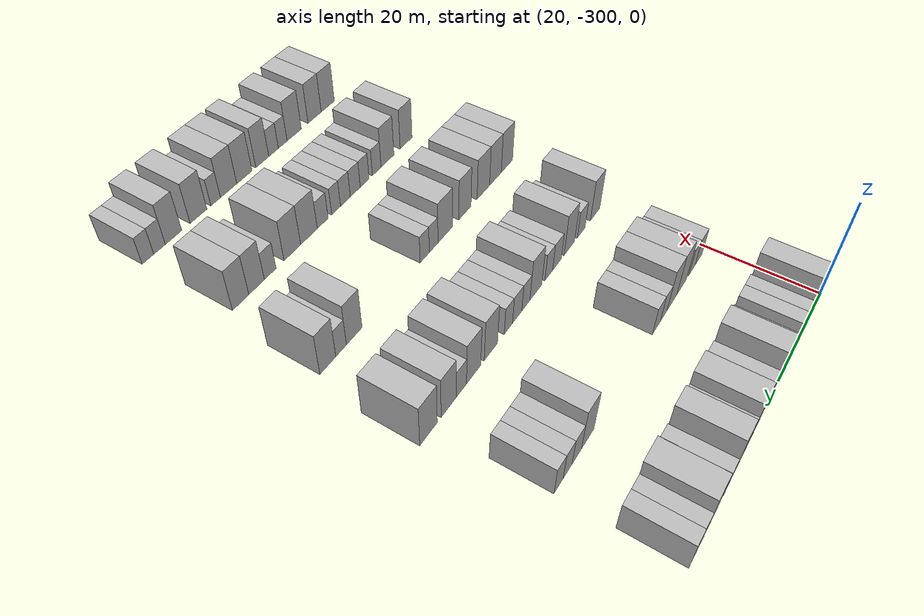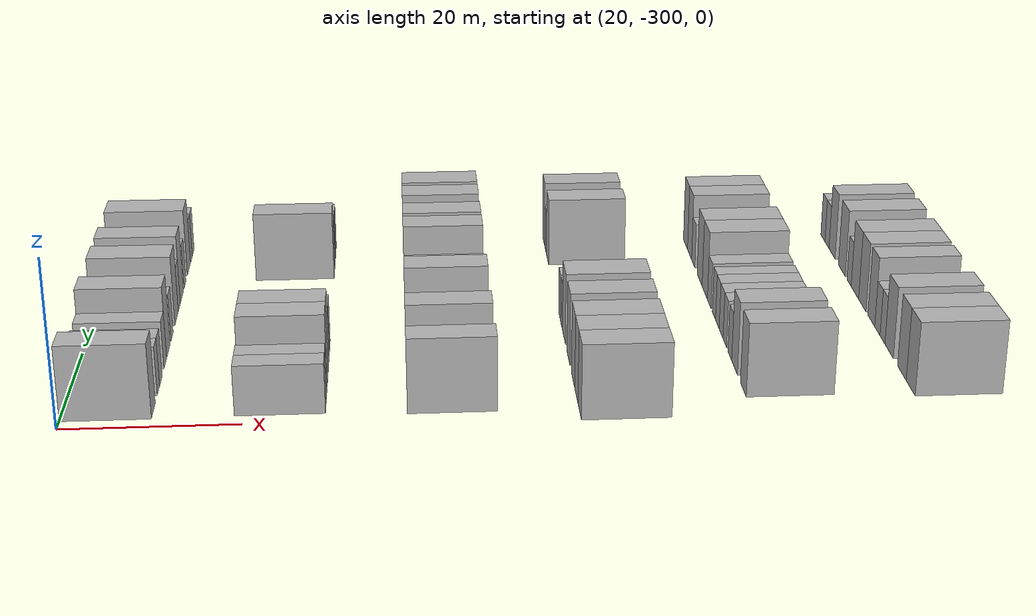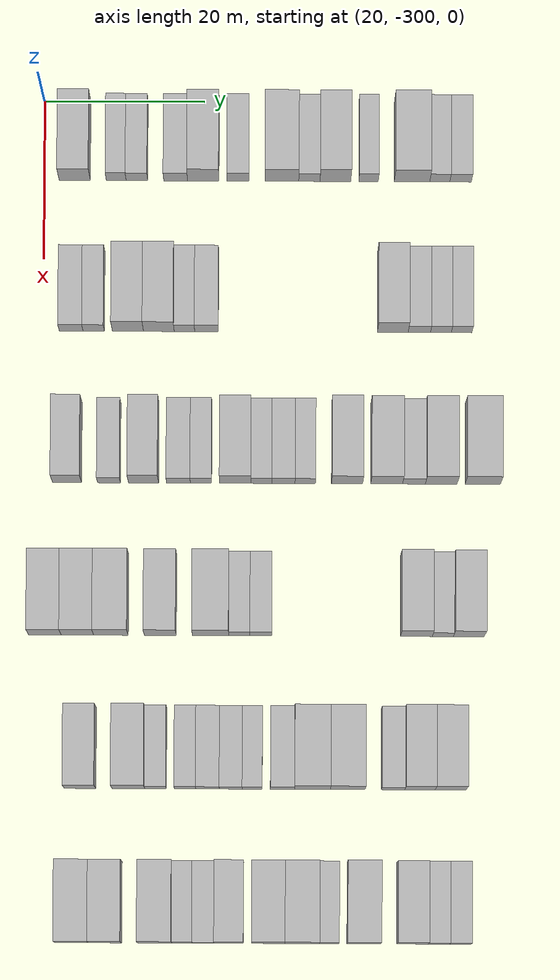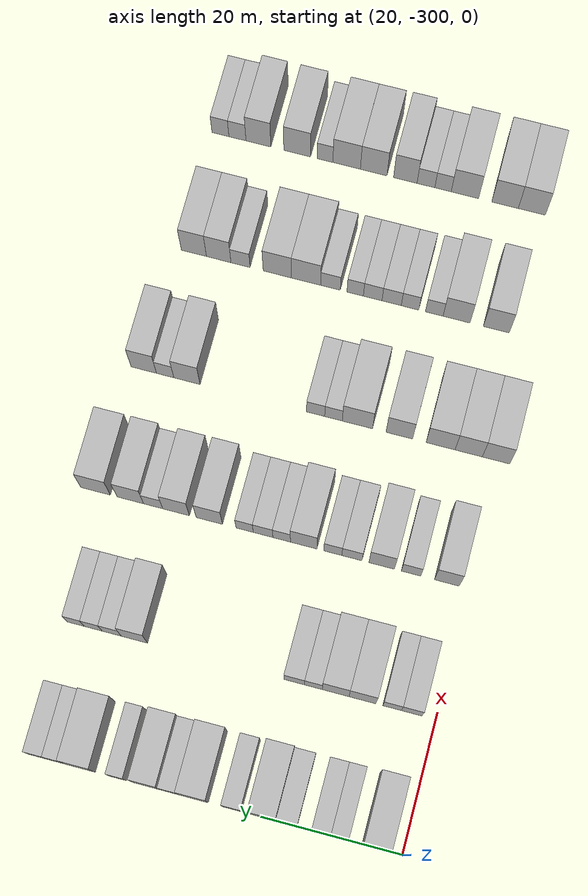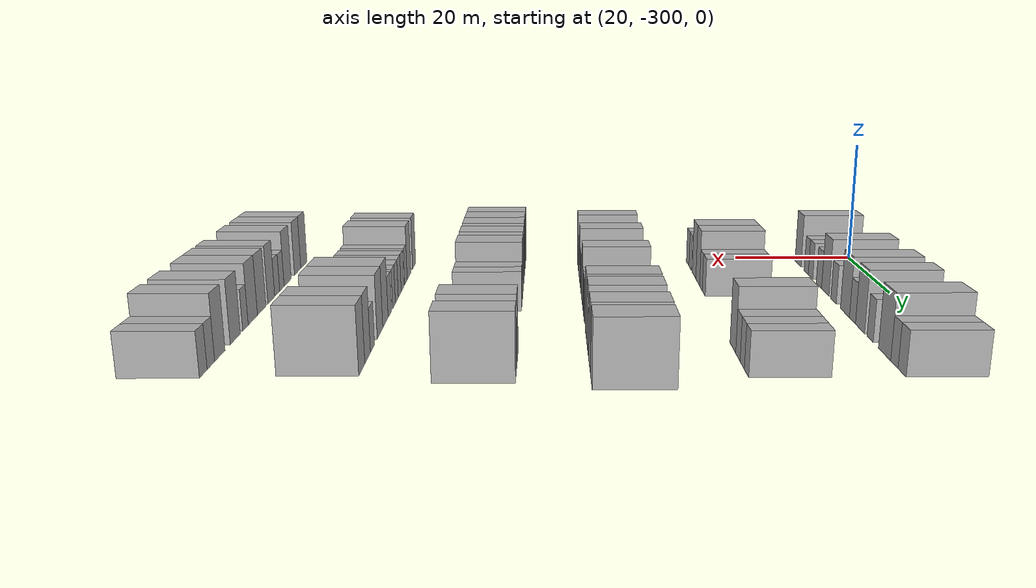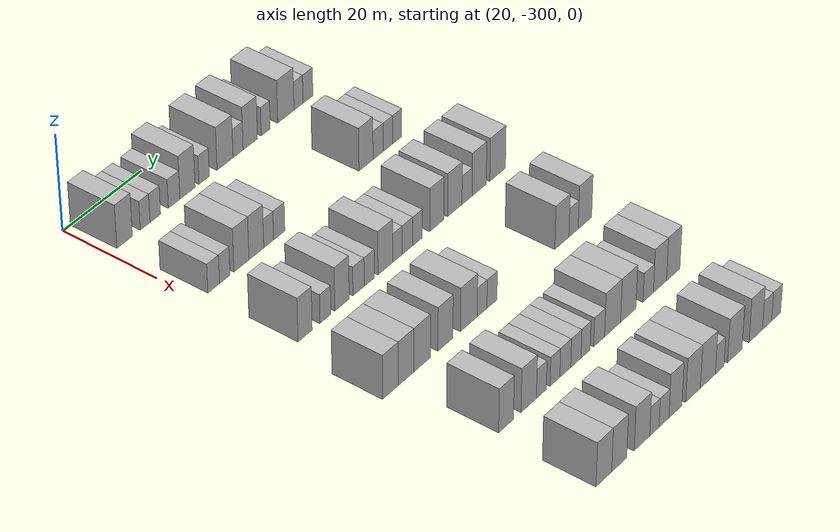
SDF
<sdf version="1.6">
 <world name="default">
  <model name="building_15">
   <static>1</static>
   <pose>25.0000 -296.1881 0 0.000000 0.000000 0.000000</pose>
   <link name="link">
    <pose>0 0 4.50 0 0 0</pose>
    <collision name="collision"><geometry><box><size>10.0000 3.8890 9.0000</size></box></geometry></collision>
    <visual name="visual">
     <cast_shadows>0</cast_shadows>
     <geometry><box><size>10.0000 3.8890 9.0000</size></box></geometry>
     <material>
      <script>
       <uri>model://HANNAS_wall/materials/scripts</uri>
       <uri>model://HANNAS_wall/materials/textures</uri>
       <name>vrc/HANNAS_wall</name>
      </script>
     </material>
    </visual>
   </link>
  </model>
  <model name="building_16">
   <static>1</static>
   <pose>25.0000 -291.0046 0 0.000000 0.000000 0.000000</pose>
   <link name="link">
    <pose>0 0 3.00 0 0 0</pose>
    <collision name="collision"><geometry><box><size>10.0000 2.4780 6.0000</size></box></geometry></collision>
    <visual name="visual">
     <cast_shadows>0</cast_shadows>
     <geometry><box><size>10.0000 2.4780 6.0000</size></box></geometry>
     <material>
      <script>
       <uri>model://HANNAS_wall/materials/scripts</uri>
       <uri>model://HANNAS_wall/materials/textures</uri>
       <name>vrc/HANNAS_wall</name>
      </script>
     </material>
    </visual>
   </link>
  </model>
  <model name="building_17">
   <static>1</static>
   <pose>25.0000 -288.4177 0 0.000000 0.000000 0.000000</pose>
   <link name="link">
    <pose>0 0 3.00 0 0 0</pose>
    <collision name="collision"><geometry><box><size>10.0000 2.6958 6.0000</size></box></geometry></collision>
    <visual name="visual">
     <cast_shadows>0</cast_shadows>
     <geometry><box><size>10.0000 2.6958 6.0000</size></box></geometry>
     <material>
      <script>
       <uri>model://HANNAS_wall/materials/scripts</uri>
       <uri>model://HANNAS_wall/materials/textures</uri>
       <name>vrc/HANNAS_wall</name>
      </script>
     </material>
    </visual>
   </link>
  </model>
  <model name="building_18">
   <static>1</static>
   <pose>25.0000 -283.5823 0 0.000000 0.000000 0.000000</pose>
   <link name="link">
    <pose>0 0 3.00 0 0 0</pose>
    <collision name="collision"><geometry><box><size>10.0000 2.9750 6.0000</size></box></geometry></collision>
    <visual name="visual">
     <cast_shadows>0</cast_shadows>
     <geometry><box><size>10.0000 2.9750 6.0000</size></box></geometry>
     <material>
      <script>
       <uri>model://HANNAS_wall/materials/scripts</uri>
       <uri>model://HANNAS_wall/materials/textures</uri>
       <name>vrc/HANNAS_wall</name>
      </script>
     </material>
    </visual>
   </link>
  </model>
  <model name="building_19">
   <static>1</static>
   <pose>25.0000 -280.1263 0 0.000000 0.000000 0.000000</pose>
   <link name="link">
    <pose>0 0 4.50 0 0 0</pose>
    <collision name="collision"><geometry><box><size>10.0000 3.9369 9.0000</size></box></geometry></collision>
    <visual name="visual">
     <cast_shadows>0</cast_shadows>
     <geometry><box><size>10.0000 3.9369 9.0000</size></box></geometry>
     <material>
      <script>
       <uri>model://HANNAS_wall/materials/scripts</uri>
       <uri>model://HANNAS_wall/materials/textures</uri>
       <name>vrc/HANNAS_wall</name>
      </script>
     </material>
    </visual>
   </link>
  </model>
  <model name="building_20">
   <static>1</static>
   <pose>25.0000 -275.7909 0 0.000000 0.000000 0.000000</pose>
   <link name="link">
    <pose>0 0 3.00 0 0 0</pose>
    <collision name="collision"><geometry><box><size>10.0000 2.7338 6.0000</size></box></geometry></collision>
    <visual name="visual">
     <cast_shadows>0</cast_shadows>
     <geometry><box><size>10.0000 2.7338 6.0000</size></box></geometry>
     <material>
      <script>
       <uri>model://HANNAS_wall/materials/scripts</uri>
       <uri>model://HANNAS_wall/materials/textures</uri>
       <name>vrc/HANNAS_wall</name>
      </script>
     </material>
    </visual>
   </link>
  </model>
  <model name="building_21">
   <static>1</static>
   <pose>25.0000 -270.3111 0 0.000000 0.000000 0.000000</pose>
   <link name="link">
    <pose>0 0 4.50 0 0 0</pose>
    <collision name="collision"><geometry><box><size>10.0000 4.2259 9.0000</size></box></geometry></collision>
    <visual name="visual">
     <cast_shadows>0</cast_shadows>
     <geometry><box><size>10.0000 4.2259 9.0000</size></box></geometry>
     <material>
      <script>
       <uri>model://HANNAS_wall/materials/scripts</uri>
       <uri>model://HANNAS_wall/materials/textures</uri>
       <name>vrc/HANNAS_wall</name>
      </script>
     </material>
    </visual>
   </link>
  </model>
  <model name="building_22">
   <static>1</static>
   <pose>25.0000 -266.8667 0 0.000000 0.000000 0.000000</pose>
   <link name="link">
    <pose>0 0 3.00 0 0 0</pose>
    <collision name="collision"><geometry><box><size>10.0000 2.6630 6.0000</size></box></geometry></collision>
    <visual name="visual">
     <cast_shadows>0</cast_shadows>
     <geometry><box><size>10.0000 2.6630 6.0000</size></box></geometry>
     <material>
      <script>
       <uri>model://HANNAS_wall/materials/scripts</uri>
       <uri>model://HANNAS_wall/materials/textures</uri>
       <name>vrc/HANNAS_wall</name>
      </script>
     </material>
    </visual>
   </link>
  </model>
  <model name="building_23">
   <static>1</static>
   <pose>25.0000 -263.6140 0 0.000000 0.000000 0.000000</pose>
   <link name="link">
    <pose>0 0 4.50 0 0 0</pose>
    <collision name="collision"><geometry><box><size>10.0000 3.8423 9.0000</size></box></geometry></collision>
    <visual name="visual">
     <cast_shadows>0</cast_shadows>
     <geometry><box><size>10.0000 3.8423 9.0000</size></box></geometry>
     <material>
      <script>
       <uri>model://HANNAS_wall/materials/scripts</uri>
       <uri>model://HANNAS_wall/materials/textures</uri>
       <name>vrc/HANNAS_wall</name>
      </script>
     </material>
    </visual>
   </link>
  </model>
  <model name="building_24">
   <static>1</static>
   <pose>25.0000 -259.4730 0 0.000000 0.000000 0.000000</pose>
   <link name="link">
    <pose>0 0 3.00 0 0 0</pose>
    <collision name="collision"><geometry><box><size>10.0000 2.4398 6.0000</size></box></geometry></collision>
    <visual name="visual">
     <cast_shadows>0</cast_shadows>
     <geometry><box><size>10.0000 2.4398 6.0000</size></box></geometry>
     <material>
      <script>
       <uri>model://HANNAS_wall/materials/scripts</uri>
       <uri>model://HANNAS_wall/materials/textures</uri>
       <name>vrc/HANNAS_wall</name>
      </script>
     </material>
    </visual>
   </link>
  </model>
  <model name="building_25">
   <static>1</static>
   <pose>25.0000 -254.0365 0 0.000000 0.000000 0.000000</pose>
   <link name="link">
    <pose>0 0 4.50 0 0 0</pose>
    <collision name="collision"><geometry><box><size>10.0000 4.4332 9.0000</size></box></geometry></collision>
    <visual name="visual">
     <cast_shadows>0</cast_shadows>
     <geometry><box><size>10.0000 4.4332 9.0000</size></box></geometry>
     <material>
      <script>
       <uri>model://HANNAS_wall/materials/scripts</uri>
       <uri>model://HANNAS_wall/materials/textures</uri>
       <name>vrc/HANNAS_wall</name>
      </script>
     </material>
    </visual>
   </link>
  </model>
  <model name="building_26">
   <static>1</static>
   <pose>25.0000 -250.5662 0 0.000000 0.000000 0.000000</pose>
   <link name="link">
    <pose>0 0 3.00 0 0 0</pose>
    <collision name="collision"><geometry><box><size>10.0000 2.5076 6.0000</size></box></geometry></collision>
    <visual name="visual">
     <cast_shadows>0</cast_shadows>
     <geometry><box><size>10.0000 2.5076 6.0000</size></box></geometry>
     <material>
      <script>
       <uri>model://HANNAS_wall/materials/scripts</uri>
       <uri>model://HANNAS_wall/materials/textures</uri>
       <name>vrc/HANNAS_wall</name>
      </script>
     </material>
    </visual>
   </link>
  </model>
  <model name="building_27">
   <static>1</static>
   <pose>25.0000 -247.9675 0 0.000000 0.000000 0.000000</pose>
   <link name="link">
    <pose>0 0 3.00 0 0 0</pose>
    <collision name="collision"><geometry><box><size>10.0000 2.6899 6.0000</size></box></geometry></collision>
    <visual name="visual">
     <cast_shadows>0</cast_shadows>
     <geometry><box><size>10.0000 2.6899 6.0000</size></box></geometry>
     <material>
      <script>
       <uri>model://HANNAS_wall/materials/scripts</uri>
       <uri>model://HANNAS_wall/materials/textures</uri>
       <name>vrc/HANNAS_wall</name>
      </script>
     </material>
    </visual>
   </link>
  </model>
  <model name="building_201">
   <static>1</static>
   <pose>44.0000 -296.4915 0 0.000000 0.000000 0.000000</pose>
   <link name="link">
    <pose>0 0 3.00 0 0 0</pose>
    <collision name="collision"><geometry><box><size>10.0000 2.9572 6.0000</size></box></geometry></collision>
    <visual name="visual">
     <cast_shadows>0</cast_shadows>
     <geometry><box><size>10.0000 2.9572 6.0000</size></box></geometry>
     <material>
      <script>
       <uri>model://HANNAS_wall/materials/scripts</uri>
       <uri>model://HANNAS_wall/materials/textures</uri>
       <name>vrc/HANNAS_wall</name>
      </script>
     </material>
    </visual>
   </link>
  </model>
  <model name="building_202">
   <static>1</static>
   <pose>44.0000 -293.6804 0 0.000000 0.000000 0.000000</pose>
   <link name="link">
    <pose>0 0 3.00 0 0 0</pose>
    <collision name="collision"><geometry><box><size>10.0000 2.6650 6.0000</size></box></geometry></collision>
    <visual name="visual">
     <cast_shadows>0</cast_shadows>
     <geometry><box><size>10.0000 2.6650 6.0000</size></box></geometry>
     <material>
      <script>
       <uri>model://HANNAS_wall/materials/scripts</uri>
       <uri>model://HANNAS_wall/materials/textures</uri>
       <name>vrc/HANNAS_wall</name>
      </script>
     </material>
    </visual>
   </link>
  </model>
  <model name="building_203">
   <static>1</static>
   <pose>44.0000 -289.4151 0 0.000000 0.000000 0.000000</pose>
   <link name="link">
    <pose>0 0 4.50 0 0 0</pose>
    <collision name="collision"><geometry><box><size>10.0000 3.8655 9.0000</size></box></geometry></collision>
    <visual name="visual">
     <cast_shadows>0</cast_shadows>
     <geometry><box><size>10.0000 3.8655 9.0000</size></box></geometry>
     <material>
      <script>
       <uri>model://HANNAS_wall/materials/scripts</uri>
       <uri>model://HANNAS_wall/materials/textures</uri>
       <name>vrc/HANNAS_wall</name>
      </script>
     </material>
    </visual>
   </link>
  </model>
  <model name="building_204">
   <static>1</static>
   <pose>44.0000 -285.5662 0 0.000000 0.000000 0.000000</pose>
   <link name="link">
    <pose>0 0 4.50 0 0 0</pose>
    <collision name="collision"><geometry><box><size>10.0000 3.8322 9.0000</size></box></geometry></collision>
    <visual name="visual">
     <cast_shadows>0</cast_shadows>
     <geometry><box><size>10.0000 3.8322 9.0000</size></box></geometry>
     <material>
      <script>
       <uri>model://HANNAS_wall/materials/scripts</uri>
       <uri>model://HANNAS_wall/materials/textures</uri>
       <name>vrc/HANNAS_wall</name>
      </script>
     </material>
    </visual>
   </link>
  </model>
  <model name="building_205">
   <static>1</static>
   <pose>44.0000 -282.3752 0 0.000000 0.000000 0.000000</pose>
   <link name="link">
    <pose>0 0 3.00 0 0 0</pose>
    <collision name="collision"><geometry><box><size>10.0000 2.5498 6.0000</size></box></geometry></collision>
    <visual name="visual">
     <cast_shadows>0</cast_shadows>
     <geometry><box><size>10.0000 2.5498 6.0000</size></box></geometry>
     <material>
      <script>
       <uri>model://HANNAS_wall/materials/scripts</uri>
       <uri>model://HANNAS_wall/materials/textures</uri>
       <name>vrc/HANNAS_wall</name>
      </script>
     </material>
    </visual>
   </link>
  </model>
  <model name="building_206">
   <static>1</static>
   <pose>44.0000 -279.6230 0 0.000000 0.000000 0.000000</pose>
   <link name="link">
    <pose>0 0 3.00 0 0 0</pose>
    <collision name="collision"><geometry><box><size>10.0000 2.9546 6.0000</size></box></geometry></collision>
    <visual name="visual">
     <cast_shadows>0</cast_shadows>
     <geometry><box><size>10.0000 2.9546 6.0000</size></box></geometry>
     <material>
      <script>
       <uri>model://HANNAS_wall/materials/scripts</uri>
       <uri>model://HANNAS_wall/materials/textures</uri>
       <name>vrc/HANNAS_wall</name>
      </script>
     </material>
    </visual>
   </link>
  </model>
  <model name="building_207">
   <static>1</static>
   <pose>44.0000 -256.4159 0 0.000000 0.000000 0.000000</pose>
   <link name="link">
    <pose>0 0 4.50 0 0 0</pose>
    <collision name="collision"><geometry><box><size>10.0000 3.8199 9.0000</size></box></geometry></collision>
    <visual name="visual">
     <cast_shadows>0</cast_shadows>
     <geometry><box><size>10.0000 3.8199 9.0000</size></box></geometry>
     <material>
      <script>
       <uri>model://HANNAS_wall/materials/scripts</uri>
       <uri>model://HANNAS_wall/materials/textures</uri>
       <name>vrc/HANNAS_wall</name>
      </script>
     </material>
    </visual>
   </link>
  </model>
  <model name="building_208">
   <static>1</static>
   <pose>44.0000 -253.1088 0 0.000000 0.000000 0.000000</pose>
   <link name="link">
    <pose>0 0 3.00 0 0 0</pose>
    <collision name="collision"><geometry><box><size>10.0000 2.7942 6.0000</size></box></geometry></collision>
    <visual name="visual">
     <cast_shadows>0</cast_shadows>
     <geometry><box><size>10.0000 2.7942 6.0000</size></box></geometry>
     <material>
      <script>
       <uri>model://HANNAS_wall/materials/scripts</uri>
       <uri>model://HANNAS_wall/materials/textures</uri>
       <name>vrc/HANNAS_wall</name>
      </script>
     </material>
    </visual>
   </link>
  </model>
  <model name="building_209">
   <static>1</static>
   <pose>44.0000 -250.4140 0 0.000000 0.000000 0.000000</pose>
   <link name="link">
    <pose>0 0 3.00 0 0 0</pose>
    <collision name="collision"><geometry><box><size>10.0000 2.5955 6.0000</size></box></geometry></collision>
    <visual name="visual">
     <cast_shadows>0</cast_shadows>
     <geometry><box><size>10.0000 2.5955 6.0000</size></box></geometry>
     <material>
      <script>
       <uri>model://HANNAS_wall/materials/scripts</uri>
       <uri>model://HANNAS_wall/materials/textures</uri>
       <name>vrc/HANNAS_wall</name>
      </script>
     </material>
    </visual>
   </link>
  </model>
  <model name="building_210">
   <static>1</static>
   <pose>44.0000 -247.8364 0 0.000000 0.000000 0.000000</pose>
   <link name="link">
    <pose>0 0 3.00 0 0 0</pose>
    <collision name="collision"><geometry><box><size>10.0000 2.5597 6.0000</size></box></geometry></collision>
    <visual name="visual">
     <cast_shadows>0</cast_shadows>
     <geometry><box><size>10.0000 2.5597 6.0000</size></box></geometry>
     <material>
      <script>
       <uri>model://HANNAS_wall/materials/scripts</uri>
       <uri>model://HANNAS_wall/materials/textures</uri>
       <name>vrc/HANNAS_wall</name>
      </script>
     </material>
    </visual>
   </link>
  </model>
  <model name="building_370">
   <static>1</static>
   <pose>63.0000 -296.8537 0 0.000000 0.000000 0.000000</pose>
   <link name="link">
    <pose>0 0 4.50 0 0 0</pose>
    <collision name="collision"><geometry><box><size>10.0000 3.6022 9.0000</size></box></geometry></collision>
    <visual name="visual">
     <cast_shadows>0</cast_shadows>
     <geometry><box><size>10.0000 3.6022 9.0000</size></box></geometry>
     <material>
      <script>
       <uri>model://HANNAS_wall/materials/scripts</uri>
       <uri>model://HANNAS_wall/materials/textures</uri>
       <name>vrc/HANNAS_wall</name>
      </script>
     </material>
    </visual>
   </link>
  </model>
  <model name="building_371">
   <static>1</static>
   <pose>63.0000 -291.6372 0 0.000000 0.000000 0.000000</pose>
   <link name="link">
    <pose>0 0 3.00 0 0 0</pose>
    <collision name="collision"><geometry><box><size>10.0000 2.8308 6.0000</size></box></geometry></collision>
    <visual name="visual">
     <cast_shadows>0</cast_shadows>
     <geometry><box><size>10.0000 2.8308 6.0000</size></box></geometry>
     <material>
      <script>
       <uri>model://HANNAS_wall/materials/scripts</uri>
       <uri>model://HANNAS_wall/materials/textures</uri>
       <name>vrc/HANNAS_wall</name>
      </script>
     </material>
    </visual>
   </link>
  </model>
  <model name="building_372">
   <static>1</static>
   <pose>63.0000 -287.3521 0 0.000000 0.000000 0.000000</pose>
   <link name="link">
    <pose>0 0 4.50 0 0 0</pose>
    <collision name="collision"><geometry><box><size>10.0000 3.7393 9.0000</size></box></geometry></collision>
    <visual name="visual">
     <cast_shadows>0</cast_shadows>
     <geometry><box><size>10.0000 3.7393 9.0000</size></box></geometry>
     <material>
      <script>
       <uri>model://HANNAS_wall/materials/scripts</uri>
       <uri>model://HANNAS_wall/materials/textures</uri>
       <name>vrc/HANNAS_wall</name>
      </script>
     </material>
    </visual>
   </link>
  </model>
  <model name="building_373">
   <static>1</static>
   <pose>63.0000 -283.0056 0 0.000000 0.000000 0.000000</pose>
   <link name="link">
    <pose>0 0 3.00 0 0 0</pose>
    <collision name="collision"><geometry><box><size>10.0000 2.9537 6.0000</size></box></geometry></collision>
    <visual name="visual">
     <cast_shadows>0</cast_shadows>
     <geometry><box><size>10.0000 2.9537 6.0000</size></box></geometry>
     <material>
      <script>
       <uri>model://HANNAS_wall/materials/scripts</uri>
       <uri>model://HANNAS_wall/materials/textures</uri>
       <name>vrc/HANNAS_wall</name>
      </script>
     </material>
    </visual>
   </link>
  </model>
  <model name="building_374">
   <static>1</static>
   <pose>63.0000 -280.2089 0 0.000000 0.000000 0.000000</pose>
   <link name="link">
    <pose>0 0 3.00 0 0 0</pose>
    <collision name="collision"><geometry><box><size>10.0000 2.6397 6.0000</size></box></geometry></collision>
    <visual name="visual">
     <cast_shadows>0</cast_shadows>
     <geometry><box><size>10.0000 2.6397 6.0000</size></box></geometry>
     <material>
      <script>
       <uri>model://HANNAS_wall/materials/scripts</uri>
       <uri>model://HANNAS_wall/materials/textures</uri>
       <name>vrc/HANNAS_wall</name>
      </script>
     </material>
    </visual>
   </link>
  </model>
  <model name="building_375">
   <static>1</static>
   <pose>63.0000 -275.9457 0 0.000000 0.000000 0.000000</pose>
   <link name="link">
    <pose>0 0 4.50 0 0 0</pose>
    <collision name="collision"><geometry><box><size>10.0000 3.8866 9.0000</size></box></geometry></collision>
    <visual name="visual">
     <cast_shadows>0</cast_shadows>
     <geometry><box><size>10.0000 3.8866 9.0000</size></box></geometry>
     <material>
      <script>
       <uri>model://HANNAS_wall/materials/scripts</uri>
       <uri>model://HANNAS_wall/materials/textures</uri>
       <name>vrc/HANNAS_wall</name>
      </script>
     </material>
    </visual>
   </link>
  </model>
  <model name="building_376">
   <static>1</static>
   <pose>63.0000 -272.7107 0 0.000000 0.000000 0.000000</pose>
   <link name="link">
    <pose>0 0 3.00 0 0 0</pose>
    <collision name="collision"><geometry><box><size>10.0000 2.5835 6.0000</size></box></geometry></collision>
    <visual name="visual">
     <cast_shadows>0</cast_shadows>
     <geometry><box><size>10.0000 2.5835 6.0000</size></box></geometry>
     <material>
      <script>
       <uri>model://HANNAS_wall/materials/scripts</uri>
       <uri>model://HANNAS_wall/materials/textures</uri>
       <name>vrc/HANNAS_wall</name>
      </script>
     </material>
    </visual>
   </link>
  </model>
  <model name="building_377">
   <static>1</static>
   <pose>63.0000 -269.9775 0 0.000000 0.000000 0.000000</pose>
   <link name="link">
    <pose>0 0 3.00 0 0 0</pose>
    <collision name="collision"><geometry><box><size>10.0000 2.8830 6.0000</size></box></geometry></collision>
    <visual name="visual">
     <cast_shadows>0</cast_shadows>
     <geometry><box><size>10.0000 2.8830 6.0000</size></box></geometry>
     <material>
      <script>
       <uri>model://HANNAS_wall/materials/scripts</uri>
       <uri>model://HANNAS_wall/materials/textures</uri>
       <name>vrc/HANNAS_wall</name>
      </script>
     </material>
    </visual>
   </link>
  </model>
  <model name="building_378">
   <static>1</static>
   <pose>63.0000 -267.2655 0 0.000000 0.000000 0.000000</pose>
   <link name="link">
    <pose>0 0 3.00 0 0 0</pose>
    <collision name="collision"><geometry><box><size>10.0000 2.5409 6.0000</size></box></geometry></collision>
    <visual name="visual">
     <cast_shadows>0</cast_shadows>
     <geometry><box><size>10.0000 2.5409 6.0000</size></box></geometry>
     <material>
      <script>
       <uri>model://HANNAS_wall/materials/scripts</uri>
       <uri>model://HANNAS_wall/materials/textures</uri>
       <name>vrc/HANNAS_wall</name>
      </script>
     </material>
    </visual>
   </link>
  </model>
  <model name="building_379">
   <static>1</static>
   <pose>63.0000 -262.0587 0 0.000000 0.000000 0.000000</pose>
   <link name="link">
    <pose>0 0 4.50 0 0 0</pose>
    <collision name="collision"><geometry><box><size>10.0000 3.8727 9.0000</size></box></geometry></collision>
    <visual name="visual">
     <cast_shadows>0</cast_shadows>
     <geometry><box><size>10.0000 3.8727 9.0000</size></box></geometry>
     <material>
      <script>
       <uri>model://HANNAS_wall/materials/scripts</uri>
       <uri>model://HANNAS_wall/materials/textures</uri>
       <name>vrc/HANNAS_wall</name>
      </script>
     </material>
    </visual>
   </link>
  </model>
  <model name="building_380">
   <static>1</static>
   <pose>63.0000 -257.1453 0 0.000000 0.000000 0.000000</pose>
   <link name="link">
    <pose>0 0 4.50 0 0 0</pose>
    <collision name="collision"><geometry><box><size>10.0000 3.9542 9.0000</size></box></geometry></collision>
    <visual name="visual">
     <cast_shadows>0</cast_shadows>
     <geometry><box><size>10.0000 3.9542 9.0000</size></box></geometry>
     <material>
      <script>
       <uri>model://HANNAS_wall/materials/scripts</uri>
       <uri>model://HANNAS_wall/materials/textures</uri>
       <name>vrc/HANNAS_wall</name>
      </script>
     </material>
    </visual>
   </link>
  </model>
  <model name="building_381">
   <static>1</static>
   <pose>63.0000 -253.7509 0 0.000000 0.000000 0.000000</pose>
   <link name="link">
    <pose>0 0 3.00 0 0 0</pose>
    <collision name="collision"><geometry><box><size>10.0000 2.8347 6.0000</size></box></geometry></collision>
    <visual name="visual">
     <cast_shadows>0</cast_shadows>
     <geometry><box><size>10.0000 2.8347 6.0000</size></box></geometry>
     <material>
      <script>
       <uri>model://HANNAS_wall/materials/scripts</uri>
       <uri>model://HANNAS_wall/materials/textures</uri>
       <name>vrc/HANNAS_wall</name>
      </script>
     </material>
    </visual>
   </link>
  </model>
  <model name="building_382">
   <static>1</static>
   <pose>63.0000 -250.3637 0 0.000000 0.000000 0.000000</pose>
   <link name="link">
    <pose>0 0 4.50 0 0 0</pose>
    <collision name="collision"><geometry><box><size>10.0000 3.9397 9.0000</size></box></geometry></collision>
    <visual name="visual">
     <cast_shadows>0</cast_shadows>
     <geometry><box><size>10.0000 3.9397 9.0000</size></box></geometry>
     <material>
      <script>
       <uri>model://HANNAS_wall/materials/scripts</uri>
       <uri>model://HANNAS_wall/materials/textures</uri>
       <name>vrc/HANNAS_wall</name>
      </script>
     </material>
    </visual>
   </link>
  </model>
  <model name="building_383">
   <static>1</static>
   <pose>63.0000 -245.2011 0 0.000000 0.000000 0.000000</pose>
   <link name="link">
    <pose>0 0 4.50 0 0 0</pose>
    <collision name="collision"><geometry><box><size>10.0000 4.3854 9.0000</size></box></geometry></collision>
    <visual name="visual">
     <cast_shadows>0</cast_shadows>
     <geometry><box><size>10.0000 4.3854 9.0000</size></box></geometry>
     <material>
      <script>
       <uri>model://HANNAS_wall/materials/scripts</uri>
       <uri>model://HANNAS_wall/materials/textures</uri>
       <name>vrc/HANNAS_wall</name>
      </script>
     </material>
    </visual>
   </link>
  </model>
  <model name="building_535">
   <static>1</static>
   <pose>82.0000 -299.4445 0 0.000000 0.000000 0.000000</pose>
   <link name="link">
    <pose>0 0 4.50 0 0 0</pose>
    <collision name="collision"><geometry><box><size>10.0000 4.0332 9.0000</size></box></geometry></collision>
    <visual name="visual">
     <cast_shadows>0</cast_shadows>
     <geometry><box><size>10.0000 4.0332 9.0000</size></box></geometry>
     <material>
      <script>
       <uri>model://HANNAS_wall/materials/scripts</uri>
       <uri>model://HANNAS_wall/materials/textures</uri>
       <name>vrc/HANNAS_wall</name>
      </script>
     </material>
    </visual>
   </link>
  </model>
  <model name="building_536">
   <static>1</static>
   <pose>82.0000 -295.4106 0 0.000000 0.000000 0.000000</pose>
   <link name="link">
    <pose>0 0 4.50 0 0 0</pose>
    <collision name="collision"><geometry><box><size>10.0000 4.0347 9.0000</size></box></geometry></collision>
    <visual name="visual">
     <cast_shadows>0</cast_shadows>
     <geometry><box><size>10.0000 4.0347 9.0000</size></box></geometry>
     <material>
      <script>
       <uri>model://HANNAS_wall/materials/scripts</uri>
       <uri>model://HANNAS_wall/materials/textures</uri>
       <name>vrc/HANNAS_wall</name>
      </script>
     </material>
    </visual>
   </link>
  </model>
  <model name="building_537">
   <static>1</static>
   <pose>82.0000 -291.2581 0 0.000000 0.000000 0.000000</pose>
   <link name="link">
    <pose>0 0 4.50 0 0 0</pose>
    <collision name="collision"><geometry><box><size>10.0000 4.2703 9.0000</size></box></geometry></collision>
    <visual name="visual">
     <cast_shadows>0</cast_shadows>
     <geometry><box><size>10.0000 4.2703 9.0000</size></box></geometry>
     <material>
      <script>
       <uri>model://HANNAS_wall/materials/scripts</uri>
       <uri>model://HANNAS_wall/materials/textures</uri>
       <name>vrc/HANNAS_wall</name>
      </script>
     </material>
    </visual>
   </link>
  </model>
  <model name="building_538">
   <static>1</static>
   <pose>82.0000 -285.1448 0 0.000000 0.000000 0.000000</pose>
   <link name="link">
    <pose>0 0 4.50 0 0 0</pose>
    <collision name="collision"><geometry><box><size>10.0000 3.9562 9.0000</size></box></geometry></collision>
    <visual name="visual">
     <cast_shadows>0</cast_shadows>
     <geometry><box><size>10.0000 3.9562 9.0000</size></box></geometry>
     <material>
      <script>
       <uri>model://HANNAS_wall/materials/scripts</uri>
       <uri>model://HANNAS_wall/materials/textures</uri>
       <name>vrc/HANNAS_wall</name>
      </script>
     </material>
    </visual>
   </link>
  </model>
  <model name="building_539">
   <static>1</static>
   <pose>82.0000 -278.9185 0 0.000000 0.000000 0.000000</pose>
   <link name="link">
    <pose>0 0 4.50 0 0 0</pose>
    <collision name="collision"><geometry><box><size>10.0000 4.4964 9.0000</size></box></geometry></collision>
    <visual name="visual">
     <cast_shadows>0</cast_shadows>
     <geometry><box><size>10.0000 4.4964 9.0000</size></box></geometry>
     <material>
      <script>
       <uri>model://HANNAS_wall/materials/scripts</uri>
       <uri>model://HANNAS_wall/materials/textures</uri>
       <name>vrc/HANNAS_wall</name>
      </script>
     </material>
    </visual>
   </link>
  </model>
  <model name="building_540">
   <static>1</static>
   <pose>82.0000 -275.3628 0 0.000000 0.000000 0.000000</pose>
   <link name="link">
    <pose>0 0 3.00 0 0 0</pose>
    <collision name="collision"><geometry><box><size>10.0000 2.6150 6.0000</size></box></geometry></collision>
    <visual name="visual">
     <cast_shadows>0</cast_shadows>
     <geometry><box><size>10.0000 2.6150 6.0000</size></box></geometry>
     <material>
      <script>
       <uri>model://HANNAS_wall/materials/scripts</uri>
       <uri>model://HANNAS_wall/materials/textures</uri>
       <name>vrc/HANNAS_wall</name>
      </script>
     </material>
    </visual>
   </link>
  </model>
  <model name="building_541">
   <static>1</static>
   <pose>82.0000 -272.7045 0 0.000000 0.000000 0.000000</pose>
   <link name="link">
    <pose>0 0 3.00 0 0 0</pose>
    <collision name="collision"><geometry><box><size>10.0000 2.7017 6.0000</size></box></geometry></collision>
    <visual name="visual">
     <cast_shadows>0</cast_shadows>
     <geometry><box><size>10.0000 2.7017 6.0000</size></box></geometry>
     <material>
      <script>
       <uri>model://HANNAS_wall/materials/scripts</uri>
       <uri>model://HANNAS_wall/materials/textures</uri>
       <name>vrc/HANNAS_wall</name>
      </script>
     </material>
    </visual>
   </link>
  </model>
  <model name="building_542">
   <static>1</static>
   <pose>82.0000 -253.4328 0 0.000000 0.000000 0.000000</pose>
   <link name="link">
    <pose>0 0 4.50 0 0 0</pose>
    <collision name="collision"><geometry><box><size>10.0000 3.9472 9.0000</size></box></geometry></collision>
    <visual name="visual">
     <cast_shadows>0</cast_shadows>
     <geometry><box><size>10.0000 3.9472 9.0000</size></box></geometry>
     <material>
      <script>
       <uri>model://HANNAS_wall/materials/scripts</uri>
       <uri>model://HANNAS_wall/materials/textures</uri>
       <name>vrc/HANNAS_wall</name>
      </script>
     </material>
    </visual>
   </link>
  </model>
  <model name="building_543">
   <static>1</static>
   <pose>82.0000 -250.1540 0 0.000000 0.000000 0.000000</pose>
   <link name="link">
    <pose>0 0 3.00 0 0 0</pose>
    <collision name="collision"><geometry><box><size>10.0000 2.6102 6.0000</size></box></geometry></collision>
    <visual name="visual">
     <cast_shadows>0</cast_shadows>
     <geometry><box><size>10.0000 2.6102 6.0000</size></box></geometry>
     <material>
      <script>
       <uri>model://HANNAS_wall/materials/scripts</uri>
       <uri>model://HANNAS_wall/materials/textures</uri>
       <name>vrc/HANNAS_wall</name>
      </script>
     </material>
    </visual>
   </link>
  </model>
  <model name="building_544">
   <static>1</static>
   <pose>82.0000 -246.9356 0 0.000000 0.000000 0.000000</pose>
   <link name="link">
    <pose>0 0 4.50 0 0 0</pose>
    <collision name="collision"><geometry><box><size>10.0000 3.8267 9.0000</size></box></geometry></collision>
    <visual name="visual">
     <cast_shadows>0</cast_shadows>
     <geometry><box><size>10.0000 3.8267 9.0000</size></box></geometry>
     <material>
      <script>
       <uri>model://HANNAS_wall/materials/scripts</uri>
       <uri>model://HANNAS_wall/materials/textures</uri>
       <name>vrc/HANNAS_wall</name>
      </script>
     </material>
    </visual>
   </link>
  </model>
  <model name="building_707">
   <static>1</static>
   <pose>101.0000 -294.9408 0 0.000000 0.000000 0.000000</pose>
   <link name="link">
    <pose>0 0 4.50 0 0 0</pose>
    <collision name="collision"><geometry><box><size>10.0000 3.8860 9.0000</size></box></geometry></collision>
    <visual name="visual">
     <cast_shadows>0</cast_shadows>
     <geometry><box><size>10.0000 3.8860 9.0000</size></box></geometry>
     <material>
      <script>
       <uri>model://HANNAS_wall/materials/scripts</uri>
       <uri>model://HANNAS_wall/materials/textures</uri>
       <name>vrc/HANNAS_wall</name>
      </script>
     </material>
    </visual>
   </link>
  </model>
  <model name="building_708">
   <static>1</static>
   <pose>101.0000 -288.9714 0 0.000000 0.000000 0.000000</pose>
   <link name="link">
    <pose>0 0 4.50 0 0 0</pose>
    <collision name="collision"><geometry><box><size>10.0000 4.0528 9.0000</size></box></geometry></collision>
    <visual name="visual">
     <cast_shadows>0</cast_shadows>
     <geometry><box><size>10.0000 4.0528 9.0000</size></box></geometry>
     <material>
      <script>
       <uri>model://HANNAS_wall/materials/scripts</uri>
       <uri>model://HANNAS_wall/materials/textures</uri>
       <name>vrc/HANNAS_wall</name>
      </script>
     </material>
    </visual>
   </link>
  </model>
  <model name="building_709">
   <static>1</static>
   <pose>101.0000 -285.6178 0 0.000000 0.000000 0.000000</pose>
   <link name="link">
    <pose>0 0 3.00 0 0 0</pose>
    <collision name="collision"><geometry><box><size>10.0000 2.6543 6.0000</size></box></geometry></collision>
    <visual name="visual">
     <cast_shadows>0</cast_shadows>
     <geometry><box><size>10.0000 2.6543 6.0000</size></box></geometry>
     <material>
      <script>
       <uri>model://HANNAS_wall/materials/scripts</uri>
       <uri>model://HANNAS_wall/materials/textures</uri>
       <name>vrc/HANNAS_wall</name>
      </script>
     </material>
    </visual>
   </link>
  </model>
  <model name="building_710">
   <static>1</static>
   <pose>101.0000 -281.9700 0 0.000000 0.000000 0.000000</pose>
   <link name="link">
    <pose>0 0 3.00 0 0 0</pose>
    <collision name="collision"><geometry><box><size>10.0000 2.6414 6.0000</size></box></geometry></collision>
    <visual name="visual">
     <cast_shadows>0</cast_shadows>
     <geometry><box><size>10.0000 2.6414 6.0000</size></box></geometry>
     <material>
      <script>
       <uri>model://HANNAS_wall/materials/scripts</uri>
       <uri>model://HANNAS_wall/materials/textures</uri>
       <name>vrc/HANNAS_wall</name>
      </script>
     </material>
    </visual>
   </link>
  </model>
  <model name="building_711">
   <static>1</static>
   <pose>101.0000 -279.1955 0 0.000000 0.000000 0.000000</pose>
   <link name="link">
    <pose>0 0 3.00 0 0 0</pose>
    <collision name="collision"><geometry><box><size>10.0000 2.9077 6.0000</size></box></geometry></collision>
    <visual name="visual">
     <cast_shadows>0</cast_shadows>
     <geometry><box><size>10.0000 2.9077 6.0000</size></box></geometry>
     <material>
      <script>
       <uri>model://HANNAS_wall/materials/scripts</uri>
       <uri>model://HANNAS_wall/materials/textures</uri>
       <name>vrc/HANNAS_wall</name>
      </script>
     </material>
    </visual>
   </link>
  </model>
  <model name="building_712">
   <static>1</static>
   <pose>101.0000 -276.3359 0 0.000000 0.000000 0.000000</pose>
   <link name="link">
    <pose>0 0 3.00 0 0 0</pose>
    <collision name="collision"><geometry><box><size>10.0000 2.8115 6.0000</size></box></geometry></collision>
    <visual name="visual">
     <cast_shadows>0</cast_shadows>
     <geometry><box><size>10.0000 2.8115 6.0000</size></box></geometry>
     <material>
      <script>
       <uri>model://HANNAS_wall/materials/scripts</uri>
       <uri>model://HANNAS_wall/materials/textures</uri>
       <name>vrc/HANNAS_wall</name>
      </script>
     </material>
    </visual>
   </link>
  </model>
  <model name="building_713">
   <static>1</static>
   <pose>101.0000 -273.6880 0 0.000000 0.000000 0.000000</pose>
   <link name="link">
    <pose>0 0 3.00 0 0 0</pose>
    <collision name="collision"><geometry><box><size>10.0000 2.4843 6.0000</size></box></geometry></collision>
    <visual name="visual">
     <cast_shadows>0</cast_shadows>
     <geometry><box><size>10.0000 2.4843 6.0000</size></box></geometry>
     <material>
      <script>
       <uri>model://HANNAS_wall/materials/scripts</uri>
       <uri>model://HANNAS_wall/materials/textures</uri>
       <name>vrc/HANNAS_wall</name>
      </script>
     </material>
    </visual>
   </link>
  </model>
  <model name="building_714">
   <static>1</static>
   <pose>101.0000 -269.9570 0 0.000000 0.000000 0.000000</pose>
   <link name="link">
    <pose>0 0 3.00 0 0 0</pose>
    <collision name="collision"><geometry><box><size>10.0000 2.9777 6.0000</size></box></geometry></collision>
    <visual name="visual">
     <cast_shadows>0</cast_shadows>
     <geometry><box><size>10.0000 2.9777 6.0000</size></box></geometry>
     <material>
      <script>
       <uri>model://HANNAS_wall/materials/scripts</uri>
       <uri>model://HANNAS_wall/materials/textures</uri>
       <name>vrc/HANNAS_wall</name>
      </script>
     </material>
    </visual>
   </link>
  </model>
  <model name="building_715">
   <static>1</static>
   <pose>101.0000 -266.2523 0 0.000000 0.000000 0.000000</pose>
   <link name="link">
    <pose>0 0 4.50 0 0 0</pose>
    <collision name="collision"><geometry><box><size>10.0000 4.4316 9.0000</size></box></geometry></collision>
    <visual name="visual">
     <cast_shadows>0</cast_shadows>
     <geometry><box><size>10.0000 4.4316 9.0000</size></box></geometry>
     <material>
      <script>
       <uri>model://HANNAS_wall/materials/scripts</uri>
       <uri>model://HANNAS_wall/materials/textures</uri>
       <name>vrc/HANNAS_wall</name>
      </script>
     </material>
    </visual>
   </link>
  </model>
  <model name="building_716">
   <static>1</static>
   <pose>101.0000 -261.8890 0 0.000000 0.000000 0.000000</pose>
   <link name="link">
    <pose>0 0 4.50 0 0 0</pose>
    <collision name="collision"><geometry><box><size>10.0000 4.2950 9.0000</size></box></geometry></collision>
    <visual name="visual">
     <cast_shadows>0</cast_shadows>
     <geometry><box><size>10.0000 4.2950 9.0000</size></box></geometry>
     <material>
      <script>
       <uri>model://HANNAS_wall/materials/scripts</uri>
       <uri>model://HANNAS_wall/materials/textures</uri>
       <name>vrc/HANNAS_wall</name>
      </script>
     </material>
    </visual>
   </link>
  </model>
  <model name="building_717">
   <static>1</static>
   <pose>101.0000 -256.2898 0 0.000000 0.000000 0.000000</pose>
   <link name="link">
    <pose>0 0 3.00 0 0 0</pose>
    <collision name="collision"><geometry><box><size>10.0000 2.9034 6.0000</size></box></geometry></collision>
    <visual name="visual">
     <cast_shadows>0</cast_shadows>
     <geometry><box><size>10.0000 2.9034 6.0000</size></box></geometry>
     <material>
      <script>
       <uri>model://HANNAS_wall/materials/scripts</uri>
       <uri>model://HANNAS_wall/materials/textures</uri>
       <name>vrc/HANNAS_wall</name>
      </script>
     </material>
    </visual>
   </link>
  </model>
  <model name="building_718">
   <static>1</static>
   <pose>101.0000 -252.9659 0 0.000000 0.000000 0.000000</pose>
   <link name="link">
    <pose>0 0 4.50 0 0 0</pose>
    <collision name="collision"><geometry><box><size>10.0000 3.7444 9.0000</size></box></geometry></collision>
    <visual name="visual">
     <cast_shadows>0</cast_shadows>
     <geometry><box><size>10.0000 3.7444 9.0000</size></box></geometry>
     <material>
      <script>
       <uri>model://HANNAS_wall/materials/scripts</uri>
       <uri>model://HANNAS_wall/materials/textures</uri>
       <name>vrc/HANNAS_wall</name>
      </script>
     </material>
    </visual>
   </link>
  </model>
  <model name="building_719">
   <static>1</static>
   <pose>101.0000 -249.1737 0 0.000000 0.000000 0.000000</pose>
   <link name="link">
    <pose>0 0 4.50 0 0 0</pose>
    <collision name="collision"><geometry><box><size>10.0000 3.8400 9.0000</size></box></geometry></collision>
    <visual name="visual">
     <cast_shadows>0</cast_shadows>
     <geometry><box><size>10.0000 3.8400 9.0000</size></box></geometry>
     <material>
      <script>
       <uri>model://HANNAS_wall/materials/scripts</uri>
       <uri>model://HANNAS_wall/materials/textures</uri>
       <name>vrc/HANNAS_wall</name>
      </script>
     </material>
    </visual>
   </link>
  </model>
  <model name="building_868">
   <static>1</static>
   <pose>120.0000 -295.7934 0 0.000000 0.000000 0.000000</pose>
   <link name="link">
    <pose>0 0 4.50 0 0 0</pose>
    <collision name="collision"><geometry><box><size>10.0000 4.1346 9.0000</size></box></geometry></collision>
    <visual name="visual">
     <cast_shadows>0</cast_shadows>
     <geometry><box><size>10.0000 4.1346 9.0000</size></box></geometry>
     <material>
      <script>
       <uri>model://HANNAS_wall/materials/scripts</uri>
       <uri>model://HANNAS_wall/materials/textures</uri>
       <name>vrc/HANNAS_wall</name>
      </script>
     </material>
    </visual>
   </link>
  </model>
  <model name="building_869">
   <static>1</static>
   <pose>120.0000 -291.7102 0 0.000000 0.000000 0.000000</pose>
   <link name="link">
    <pose>0 0 4.50 0 0 0</pose>
    <collision name="collision"><geometry><box><size>10.0000 4.0319 9.0000</size></box></geometry></collision>
    <visual name="visual">
     <cast_shadows>0</cast_shadows>
     <geometry><box><size>10.0000 4.0319 9.0000</size></box></geometry>
     <material>
      <script>
       <uri>model://HANNAS_wall/materials/scripts</uri>
       <uri>model://HANNAS_wall/materials/textures</uri>
       <name>vrc/HANNAS_wall</name>
      </script>
     </material>
    </visual>
   </link>
  </model>
  <model name="building_870">
   <static>1</static>
   <pose>120.0000 -285.5999 0 0.000000 0.000000 0.000000</pose>
   <link name="link">
    <pose>0 0 4.50 0 0 0</pose>
    <collision name="collision"><geometry><box><size>10.0000 4.1887 9.0000</size></box></geometry></collision>
    <visual name="visual">
     <cast_shadows>0</cast_shadows>
     <geometry><box><size>10.0000 4.1887 9.0000</size></box></geometry>
     <material>
      <script>
       <uri>model://HANNAS_wall/materials/scripts</uri>
       <uri>model://HANNAS_wall/materials/textures</uri>
       <name>vrc/HANNAS_wall</name>
      </script>
     </material>
    </visual>
   </link>
  </model>
  <model name="building_871">
   <static>1</static>
   <pose>120.0000 -282.2559 0 0.000000 0.000000 0.000000</pose>
   <link name="link">
    <pose>0 0 3.00 0 0 0</pose>
    <collision name="collision"><geometry><box><size>10.0000 2.4994 6.0000</size></box></geometry></collision>
    <visual name="visual">
     <cast_shadows>0</cast_shadows>
     <geometry><box><size>10.0000 2.4994 6.0000</size></box></geometry>
     <material>
      <script>
       <uri>model://HANNAS_wall/materials/scripts</uri>
       <uri>model://HANNAS_wall/materials/textures</uri>
       <name>vrc/HANNAS_wall</name>
      </script>
     </material>
    </visual>
   </link>
  </model>
  <model name="building_872">
   <static>1</static>
   <pose>120.0000 -279.6478 0 0.000000 0.000000 0.000000</pose>
   <link name="link">
    <pose>0 0 3.00 0 0 0</pose>
    <collision name="collision"><geometry><box><size>10.0000 2.7168 6.0000</size></box></geometry></collision>
    <visual name="visual">
     <cast_shadows>0</cast_shadows>
     <geometry><box><size>10.0000 2.7168 6.0000</size></box></geometry>
     <material>
      <script>
       <uri>model://HANNAS_wall/materials/scripts</uri>
       <uri>model://HANNAS_wall/materials/textures</uri>
       <name>vrc/HANNAS_wall</name>
      </script>
     </material>
    </visual>
   </link>
  </model>
  <model name="building_873">
   <static>1</static>
   <pose>120.0000 -276.4861 0 0.000000 0.000000 0.000000</pose>
   <link name="link">
    <pose>0 0 4.50 0 0 0</pose>
    <collision name="collision"><geometry><box><size>10.0000 3.6065 9.0000</size></box></geometry></collision>
    <visual name="visual">
     <cast_shadows>0</cast_shadows>
     <geometry><box><size>10.0000 3.6065 9.0000</size></box></geometry>
     <material>
      <script>
       <uri>model://HANNAS_wall/materials/scripts</uri>
       <uri>model://HANNAS_wall/materials/textures</uri>
       <name>vrc/HANNAS_wall</name>
      </script>
     </material>
    </visual>
   </link>
  </model>
  <model name="building_874">
   <static>1</static>
   <pose>120.0000 -271.6393 0 0.000000 0.000000 0.000000</pose>
   <link name="link">
    <pose>0 0 4.50 0 0 0</pose>
    <collision name="collision"><geometry><box><size>10.0000 4.0873 9.0000</size></box></geometry></collision>
    <visual name="visual">
     <cast_shadows>0</cast_shadows>
     <geometry><box><size>10.0000 4.0873 9.0000</size></box></geometry>
     <material>
      <script>
       <uri>model://HANNAS_wall/materials/scripts</uri>
       <uri>model://HANNAS_wall/materials/textures</uri>
       <name>vrc/HANNAS_wall</name>
      </script>
     </material>
    </visual>
   </link>
  </model>
  <model name="building_875">
   <static>1</static>
   <pose>120.0000 -267.4771 0 0.000000 0.000000 0.000000</pose>
   <link name="link">
    <pose>0 0 4.50 0 0 0</pose>
    <collision name="collision"><geometry><box><size>10.0000 4.2370 9.0000</size></box></geometry></collision>
    <visual name="visual">
     <cast_shadows>0</cast_shadows>
     <geometry><box><size>10.0000 4.2370 9.0000</size></box></geometry>
     <material>
      <script>
       <uri>model://HANNAS_wall/materials/scripts</uri>
       <uri>model://HANNAS_wall/materials/textures</uri>
       <name>vrc/HANNAS_wall</name>
      </script>
     </material>
    </visual>
   </link>
  </model>
  <model name="building_876">
   <static>1</static>
   <pose>120.0000 -264.1485 0 0.000000 0.000000 0.000000</pose>
   <link name="link">
    <pose>0 0 3.00 0 0 0</pose>
    <collision name="collision"><geometry><box><size>10.0000 2.4202 6.0000</size></box></geometry></collision>
    <visual name="visual">
     <cast_shadows>0</cast_shadows>
     <geometry><box><size>10.0000 2.4202 6.0000</size></box></geometry>
     <material>
      <script>
       <uri>model://HANNAS_wall/materials/scripts</uri>
       <uri>model://HANNAS_wall/materials/textures</uri>
       <name>vrc/HANNAS_wall</name>
      </script>
     </material>
    </visual>
   </link>
  </model>
  <model name="building_877">
   <static>1</static>
   <pose>120.0000 -259.8708 0 0.000000 0.000000 0.000000</pose>
   <link name="link">
    <pose>0 0 4.50 0 0 0</pose>
    <collision name="collision"><geometry><box><size>10.0000 4.1354 9.0000</size></box></geometry></collision>
    <visual name="visual">
     <cast_shadows>0</cast_shadows>
     <geometry><box><size>10.0000 4.1354 9.0000</size></box></geometry>
     <material>
      <script>
       <uri>model://HANNAS_wall/materials/scripts</uri>
       <uri>model://HANNAS_wall/materials/textures</uri>
       <name>vrc/HANNAS_wall</name>
      </script>
     </material>
    </visual>
   </link>
  </model>
  <model name="building_878">
   <static>1</static>
   <pose>120.0000 -253.8784 0 0.000000 0.000000 0.000000</pose>
   <link name="link">
    <pose>0 0 4.50 0 0 0</pose>
    <collision name="collision"><geometry><box><size>10.0000 3.8493 9.0000</size></box></geometry></collision>
    <visual name="visual">
     <cast_shadows>0</cast_shadows>
     <geometry><box><size>10.0000 3.8493 9.0000</size></box></geometry>
     <material>
      <script>
       <uri>model://HANNAS_wall/materials/scripts</uri>
       <uri>model://HANNAS_wall/materials/textures</uri>
       <name>vrc/HANNAS_wall</name>
      </script>
     </material>
    </visual>
   </link>
  </model>
  <model name="building_879">
   <static>1</static>
   <pose>120.0000 -250.6297 0 0.000000 0.000000 0.000000</pose>
   <link name="link">
    <pose>0 0 3.00 0 0 0</pose>
    <collision name="collision"><geometry><box><size>10.0000 2.6482 6.0000</size></box></geometry></collision>
    <visual name="visual">
     <cast_shadows>0</cast_shadows>
     <geometry><box><size>10.0000 2.6482 6.0000</size></box></geometry>
     <material>
      <script>
       <uri>model://HANNAS_wall/materials/scripts</uri>
       <uri>model://HANNAS_wall/materials/textures</uri>
       <name>vrc/HANNAS_wall</name>
      </script>
     </material>
    </visual>
   </link>
  </model>
  <model name="building_880">
   <static>1</static>
   <pose>120.0000 -247.9940 0 0.000000 0.000000 0.000000</pose>
   <link name="link">
    <pose>0 0 3.00 0 0 0</pose>
    <collision name="collision"><geometry><box><size>10.0000 2.6232 6.0000</size></box></geometry></collision>
    <visual name="visual">
     <cast_shadows>0</cast_shadows>
     <geometry><box><size>10.0000 2.6232 6.0000</size></box></geometry>
     <material>
      <script>
       <uri>model://HANNAS_wall/materials/scripts</uri>
       <uri>model://HANNAS_wall/materials/textures</uri>
       <name>vrc/HANNAS_wall</name>
      </script>
     </material>
    </visual>
   </link>
  </model>
 </world>
</sdf>
